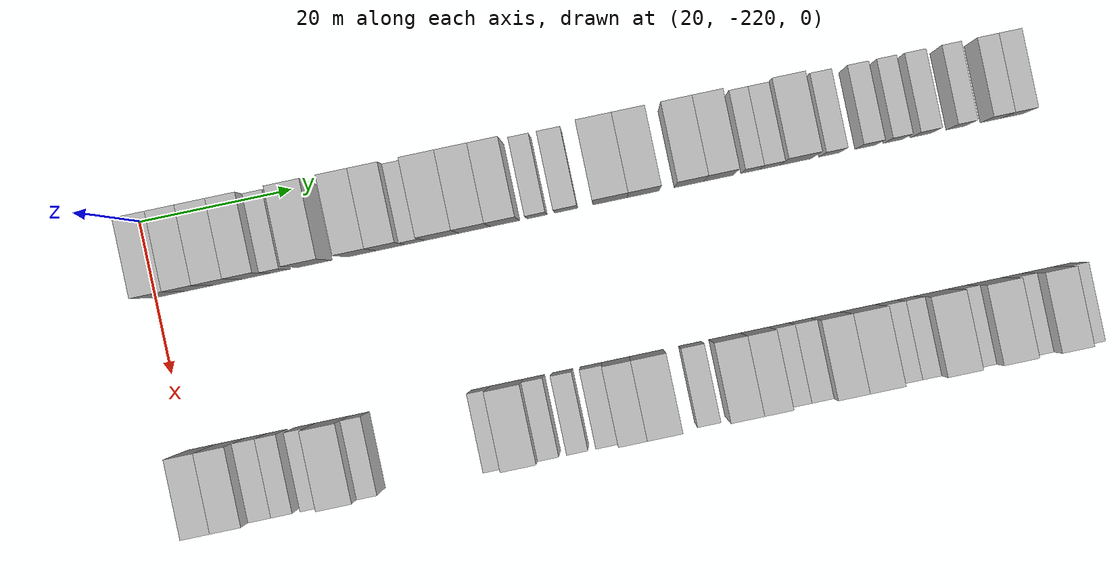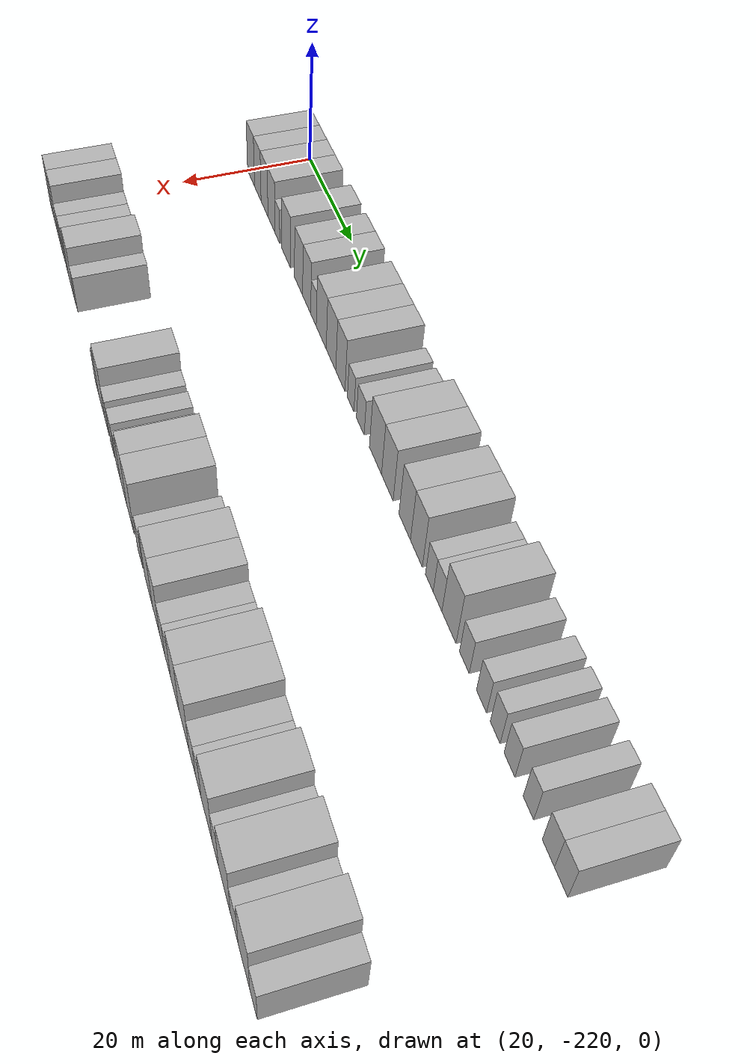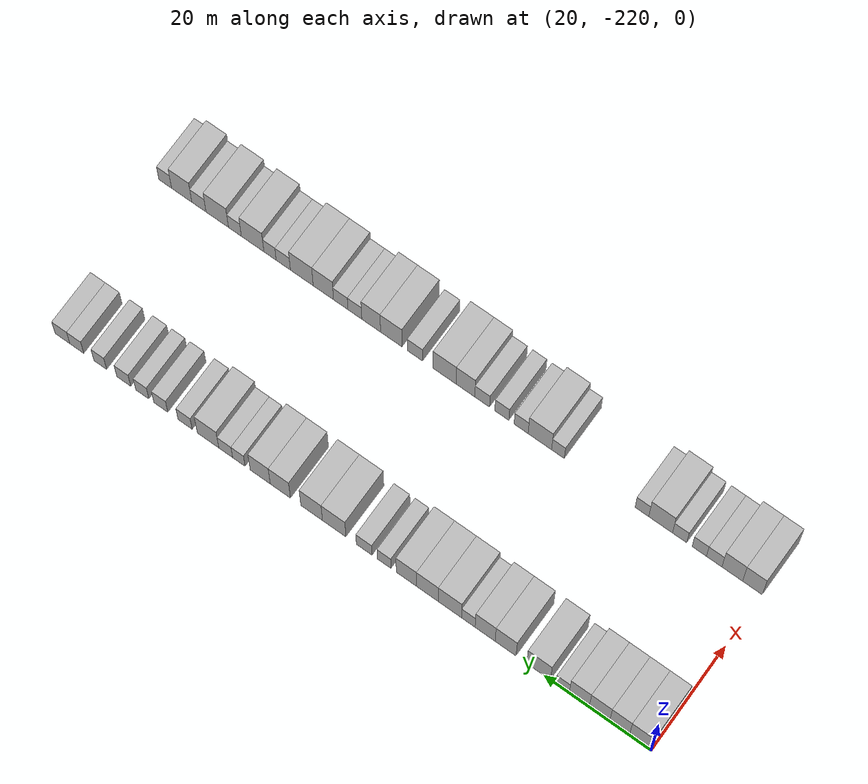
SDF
<sdf version="1.6">
 <world name="default">
  <model name="building_1">
   <static>1</static>
   <pose>25.0000 -217.9825 0 0.000000 0.000000 0.000000</pose>
   <link name="link">
    <pose>0 0 4.50 0 0 0</pose>
    <collision name="collision"><geometry><box><size>10.0000 4.0350 9.0000</size></box></geometry></collision>
    <visual name="visual">
     <cast_shadows>0</cast_shadows>
     <geometry><box><size>10.0000 4.0350 9.0000</size></box></geometry>
     <material>
      <script>
       <uri>model://HANNAS_wall/materials/scripts</uri>
       <uri>model://HANNAS_wall/materials/textures</uri>
       <name>vrc/HANNAS_wall</name>
      </script>
     </material>
    </visual>
   </link>
  </model>
  <model name="building_2">
   <static>1</static>
   <pose>25.0000 -214.1253 0 0.000000 0.000000 0.000000</pose>
   <link name="link">
    <pose>0 0 4.50 0 0 0</pose>
    <collision name="collision"><geometry><box><size>10.0000 3.6793 9.0000</size></box></geometry></collision>
    <visual name="visual">
     <cast_shadows>0</cast_shadows>
     <geometry><box><size>10.0000 3.6793 9.0000</size></box></geometry>
     <material>
      <script>
       <uri>model://HANNAS_wall/materials/scripts</uri>
       <uri>model://HANNAS_wall/materials/textures</uri>
       <name>vrc/HANNAS_wall</name>
      </script>
     </material>
    </visual>
   </link>
  </model>
  <model name="building_3">
   <static>1</static>
   <pose>25.0000 -210.3791 0 0.000000 0.000000 0.000000</pose>
   <link name="link">
    <pose>0 0 4.50 0 0 0</pose>
    <collision name="collision"><geometry><box><size>10.0000 3.8131 9.0000</size></box></geometry></collision>
    <visual name="visual">
     <cast_shadows>0</cast_shadows>
     <geometry><box><size>10.0000 3.8131 9.0000</size></box></geometry>
     <material>
      <script>
       <uri>model://HANNAS_wall/materials/scripts</uri>
       <uri>model://HANNAS_wall/materials/textures</uri>
       <name>vrc/HANNAS_wall</name>
      </script>
     </material>
    </visual>
   </link>
  </model>
  <model name="building_4">
   <static>1</static>
   <pose>25.0000 -206.6053 0 0.000000 0.000000 0.000000</pose>
   <link name="link">
    <pose>0 0 4.50 0 0 0</pose>
    <collision name="collision"><geometry><box><size>10.0000 3.7346 9.0000</size></box></geometry></collision>
    <visual name="visual">
     <cast_shadows>0</cast_shadows>
     <geometry><box><size>10.0000 3.7346 9.0000</size></box></geometry>
     <material>
      <script>
       <uri>model://HANNAS_wall/materials/scripts</uri>
       <uri>model://HANNAS_wall/materials/textures</uri>
       <name>vrc/HANNAS_wall</name>
      </script>
     </material>
    </visual>
   </link>
  </model>
  <model name="building_5">
   <static>1</static>
   <pose>25.0000 -203.4775 0 0.000000 0.000000 0.000000</pose>
   <link name="link">
    <pose>0 0 3.00 0 0 0</pose>
    <collision name="collision"><geometry><box><size>10.0000 2.5211 6.0000</size></box></geometry></collision>
    <visual name="visual">
     <cast_shadows>0</cast_shadows>
     <geometry><box><size>10.0000 2.5211 6.0000</size></box></geometry>
     <material>
      <script>
       <uri>model://HANNAS_wall/materials/scripts</uri>
       <uri>model://HANNAS_wall/materials/textures</uri>
       <name>vrc/HANNAS_wall</name>
      </script>
     </material>
    </visual>
   </link>
  </model>
  <model name="building_6">
   <static>1</static>
   <pose>25.0000 -198.9948 0 0.000000 0.000000 0.000000</pose>
   <link name="link">
    <pose>0 0 4.50 0 0 0</pose>
    <collision name="collision"><geometry><box><size>10.0000 4.4442 9.0000</size></box></geometry></collision>
    <visual name="visual">
     <cast_shadows>0</cast_shadows>
     <geometry><box><size>10.0000 4.4442 9.0000</size></box></geometry>
     <material>
      <script>
       <uri>model://HANNAS_wall/materials/scripts</uri>
       <uri>model://HANNAS_wall/materials/textures</uri>
       <name>vrc/HANNAS_wall</name>
      </script>
     </material>
    </visual>
   </link>
  </model>
  <model name="building_7">
   <static>1</static>
   <pose>25.0000 -192.8083 0 0.000000 0.000000 0.000000</pose>
   <link name="link">
    <pose>0 0 4.50 0 0 0</pose>
    <collision name="collision"><geometry><box><size>10.0000 3.9289 9.0000</size></box></geometry></collision>
    <visual name="visual">
     <cast_shadows>0</cast_shadows>
     <geometry><box><size>10.0000 3.9289 9.0000</size></box></geometry>
     <material>
      <script>
       <uri>model://HANNAS_wall/materials/scripts</uri>
       <uri>model://HANNAS_wall/materials/textures</uri>
       <name>vrc/HANNAS_wall</name>
      </script>
     </material>
    </visual>
   </link>
  </model>
  <model name="building_8">
   <static>1</static>
   <pose>25.0000 -188.9560 0 0.000000 0.000000 0.000000</pose>
   <link name="link">
    <pose>0 0 4.50 0 0 0</pose>
    <collision name="collision"><geometry><box><size>10.0000 3.7756 9.0000</size></box></geometry></collision>
    <visual name="visual">
     <cast_shadows>0</cast_shadows>
     <geometry><box><size>10.0000 3.7756 9.0000</size></box></geometry>
     <material>
      <script>
       <uri>model://HANNAS_wall/materials/scripts</uri>
       <uri>model://HANNAS_wall/materials/textures</uri>
       <name>vrc/HANNAS_wall</name>
      </script>
     </material>
    </visual>
   </link>
  </model>
  <model name="building_9">
   <static>1</static>
   <pose>25.0000 -185.7884 0 0.000000 0.000000 0.000000</pose>
   <link name="link">
    <pose>0 0 3.00 0 0 0</pose>
    <collision name="collision"><geometry><box><size>10.0000 2.5595 6.0000</size></box></geometry></collision>
    <visual name="visual">
     <cast_shadows>0</cast_shadows>
     <geometry><box><size>10.0000 2.5595 6.0000</size></box></geometry>
     <material>
      <script>
       <uri>model://HANNAS_wall/materials/scripts</uri>
       <uri>model://HANNAS_wall/materials/textures</uri>
       <name>vrc/HANNAS_wall</name>
      </script>
     </material>
    </visual>
   </link>
  </model>
  <model name="building_10">
   <static>1</static>
   <pose>25.0000 -182.2898 0 0.000000 0.000000 0.000000</pose>
   <link name="link">
    <pose>0 0 4.50 0 0 0</pose>
    <collision name="collision"><geometry><box><size>10.0000 4.4377 9.0000</size></box></geometry></collision>
    <visual name="visual">
     <cast_shadows>0</cast_shadows>
     <geometry><box><size>10.0000 4.4377 9.0000</size></box></geometry>
     <material>
      <script>
       <uri>model://HANNAS_wall/materials/scripts</uri>
       <uri>model://HANNAS_wall/materials/textures</uri>
       <name>vrc/HANNAS_wall</name>
      </script>
     </material>
    </visual>
   </link>
  </model>
  <model name="building_11">
   <static>1</static>
   <pose>25.0000 -178.0226 0 0.000000 0.000000 0.000000</pose>
   <link name="link">
    <pose>0 0 4.50 0 0 0</pose>
    <collision name="collision"><geometry><box><size>10.0000 4.0966 9.0000</size></box></geometry></collision>
    <visual name="visual">
     <cast_shadows>0</cast_shadows>
     <geometry><box><size>10.0000 4.0966 9.0000</size></box></geometry>
     <material>
      <script>
       <uri>model://HANNAS_wall/materials/scripts</uri>
       <uri>model://HANNAS_wall/materials/textures</uri>
       <name>vrc/HANNAS_wall</name>
      </script>
     </material>
    </visual>
   </link>
  </model>
  <model name="building_12">
   <static>1</static>
   <pose>25.0000 -174.0531 0 0.000000 0.000000 0.000000</pose>
   <link name="link">
    <pose>0 0 4.50 0 0 0</pose>
    <collision name="collision"><geometry><box><size>10.0000 3.8424 9.0000</size></box></geometry></collision>
    <visual name="visual">
     <cast_shadows>0</cast_shadows>
     <geometry><box><size>10.0000 3.8424 9.0000</size></box></geometry>
     <material>
      <script>
       <uri>model://HANNAS_wall/materials/scripts</uri>
       <uri>model://HANNAS_wall/materials/textures</uri>
       <name>vrc/HANNAS_wall</name>
      </script>
     </material>
    </visual>
   </link>
  </model>
  <model name="building_13">
   <static>1</static>
   <pose>25.0000 -169.8304 0 0.000000 0.000000 0.000000</pose>
   <link name="link">
    <pose>0 0 3.00 0 0 0</pose>
    <collision name="collision"><geometry><box><size>10.0000 2.6031 6.0000</size></box></geometry></collision>
    <visual name="visual">
     <cast_shadows>0</cast_shadows>
     <geometry><box><size>10.0000 2.6031 6.0000</size></box></geometry>
     <material>
      <script>
       <uri>model://HANNAS_wall/materials/scripts</uri>
       <uri>model://HANNAS_wall/materials/textures</uri>
       <name>vrc/HANNAS_wall</name>
      </script>
     </material>
    </visual>
   </link>
  </model>
  <model name="building_14">
   <static>1</static>
   <pose>25.0000 -166.0289 0 0.000000 0.000000 0.000000</pose>
   <link name="link">
    <pose>0 0 3.00 0 0 0</pose>
    <collision name="collision"><geometry><box><size>10.0000 2.9999 6.0000</size></box></geometry></collision>
    <visual name="visual">
     <cast_shadows>0</cast_shadows>
     <geometry><box><size>10.0000 2.9999 6.0000</size></box></geometry>
     <material>
      <script>
       <uri>model://HANNAS_wall/materials/scripts</uri>
       <uri>model://HANNAS_wall/materials/textures</uri>
       <name>vrc/HANNAS_wall</name>
      </script>
     </material>
    </visual>
   </link>
  </model>
  <model name="building_15">
   <static>1</static>
   <pose>25.0000 -160.2806 0 0.000000 0.000000 0.000000</pose>
   <link name="link">
    <pose>0 0 4.50 0 0 0</pose>
    <collision name="collision"><geometry><box><size>10.0000 4.4967 9.0000</size></box></geometry></collision>
    <visual name="visual">
     <cast_shadows>0</cast_shadows>
     <geometry><box><size>10.0000 4.4967 9.0000</size></box></geometry>
     <material>
      <script>
       <uri>model://HANNAS_wall/materials/scripts</uri>
       <uri>model://HANNAS_wall/materials/textures</uri>
       <name>vrc/HANNAS_wall</name>
      </script>
     </material>
    </visual>
   </link>
  </model>
  <model name="building_16">
   <static>1</static>
   <pose>25.0000 -155.9612 0 0.000000 0.000000 0.000000</pose>
   <link name="link">
    <pose>0 0 4.50 0 0 0</pose>
    <collision name="collision"><geometry><box><size>10.0000 4.1421 9.0000</size></box></geometry></collision>
    <visual name="visual">
     <cast_shadows>0</cast_shadows>
     <geometry><box><size>10.0000 4.1421 9.0000</size></box></geometry>
     <material>
      <script>
       <uri>model://HANNAS_wall/materials/scripts</uri>
       <uri>model://HANNAS_wall/materials/textures</uri>
       <name>vrc/HANNAS_wall</name>
      </script>
     </material>
    </visual>
   </link>
  </model>
  <model name="building_17">
   <static>1</static>
   <pose>25.0000 -149.9488 0 0.000000 0.000000 0.000000</pose>
   <link name="link">
    <pose>0 0 4.50 0 0 0</pose>
    <collision name="collision"><geometry><box><size>10.0000 3.8826 9.0000</size></box></geometry></collision>
    <visual name="visual">
     <cast_shadows>0</cast_shadows>
     <geometry><box><size>10.0000 3.8826 9.0000</size></box></geometry>
     <material>
      <script>
       <uri>model://HANNAS_wall/materials/scripts</uri>
       <uri>model://HANNAS_wall/materials/textures</uri>
       <name>vrc/HANNAS_wall</name>
      </script>
     </material>
    </visual>
   </link>
  </model>
  <model name="building_18">
   <static>1</static>
   <pose>25.0000 -146.0765 0 0.000000 0.000000 0.000000</pose>
   <link name="link">
    <pose>0 0 4.50 0 0 0</pose>
    <collision name="collision"><geometry><box><size>10.0000 3.8621 9.0000</size></box></geometry></collision>
    <visual name="visual">
     <cast_shadows>0</cast_shadows>
     <geometry><box><size>10.0000 3.8621 9.0000</size></box></geometry>
     <material>
      <script>
       <uri>model://HANNAS_wall/materials/scripts</uri>
       <uri>model://HANNAS_wall/materials/textures</uri>
       <name>vrc/HANNAS_wall</name>
      </script>
     </material>
    </visual>
   </link>
  </model>
  <model name="building_19">
   <static>1</static>
   <pose>25.0000 -141.9401 0 0.000000 0.000000 0.000000</pose>
   <link name="link">
    <pose>0 0 3.00 0 0 0</pose>
    <collision name="collision"><geometry><box><size>10.0000 2.4108 6.0000</size></box></geometry></collision>
    <visual name="visual">
     <cast_shadows>0</cast_shadows>
     <geometry><box><size>10.0000 2.4108 6.0000</size></box></geometry>
     <material>
      <script>
       <uri>model://HANNAS_wall/materials/scripts</uri>
       <uri>model://HANNAS_wall/materials/textures</uri>
       <name>vrc/HANNAS_wall</name>
      </script>
     </material>
    </visual>
   </link>
  </model>
  <model name="building_20">
   <static>1</static>
   <pose>25.0000 -139.4036 0 0.000000 0.000000 0.000000</pose>
   <link name="link">
    <pose>0 0 3.00 0 0 0</pose>
    <collision name="collision"><geometry><box><size>10.0000 2.6622 6.0000</size></box></geometry></collision>
    <visual name="visual">
     <cast_shadows>0</cast_shadows>
     <geometry><box><size>10.0000 2.6622 6.0000</size></box></geometry>
     <material>
      <script>
       <uri>model://HANNAS_wall/materials/scripts</uri>
       <uri>model://HANNAS_wall/materials/textures</uri>
       <name>vrc/HANNAS_wall</name>
      </script>
     </material>
    </visual>
   </link>
  </model>
  <model name="building_21">
   <static>1</static>
   <pose>25.0000 -135.9881 0 0.000000 0.000000 0.000000</pose>
   <link name="link">
    <pose>0 0 4.50 0 0 0</pose>
    <collision name="collision"><geometry><box><size>10.0000 4.1687 9.0000</size></box></geometry></collision>
    <visual name="visual">
     <cast_shadows>0</cast_shadows>
     <geometry><box><size>10.0000 4.1687 9.0000</size></box></geometry>
     <material>
      <script>
       <uri>model://HANNAS_wall/materials/scripts</uri>
       <uri>model://HANNAS_wall/materials/textures</uri>
       <name>vrc/HANNAS_wall</name>
      </script>
     </material>
    </visual>
   </link>
  </model>
  <model name="building_22">
   <static>1</static>
   <pose>25.0000 -131.5292 0 0.000000 0.000000 0.000000</pose>
   <link name="link">
    <pose>0 0 3.00 0 0 0</pose>
    <collision name="collision"><geometry><box><size>10.0000 2.7491 6.0000</size></box></geometry></collision>
    <visual name="visual">
     <cast_shadows>0</cast_shadows>
     <geometry><box><size>10.0000 2.7491 6.0000</size></box></geometry>
     <material>
      <script>
       <uri>model://HANNAS_wall/materials/scripts</uri>
       <uri>model://HANNAS_wall/materials/textures</uri>
       <name>vrc/HANNAS_wall</name>
      </script>
     </material>
    </visual>
   </link>
  </model>
  <model name="building_23">
   <static>1</static>
   <pose>25.0000 -126.8021 0 0.000000 0.000000 0.000000</pose>
   <link name="link">
    <pose>0 0 3.00 0 0 0</pose>
    <collision name="collision"><geometry><box><size>10.0000 2.7052 6.0000</size></box></geometry></collision>
    <visual name="visual">
     <cast_shadows>0</cast_shadows>
     <geometry><box><size>10.0000 2.7052 6.0000</size></box></geometry>
     <material>
      <script>
       <uri>model://HANNAS_wall/materials/scripts</uri>
       <uri>model://HANNAS_wall/materials/textures</uri>
       <name>vrc/HANNAS_wall</name>
      </script>
     </material>
    </visual>
   </link>
  </model>
  <model name="building_24">
   <static>1</static>
   <pose>25.0000 -123.1851 0 0.000000 0.000000 0.000000</pose>
   <link name="link">
    <pose>0 0 3.00 0 0 0</pose>
    <collision name="collision"><geometry><box><size>10.0000 2.5289 6.0000</size></box></geometry></collision>
    <visual name="visual">
     <cast_shadows>0</cast_shadows>
     <geometry><box><size>10.0000 2.5289 6.0000</size></box></geometry>
     <material>
      <script>
       <uri>model://HANNAS_wall/materials/scripts</uri>
       <uri>model://HANNAS_wall/materials/textures</uri>
       <name>vrc/HANNAS_wall</name>
      </script>
     </material>
    </visual>
   </link>
  </model>
  <model name="building_25">
   <static>1</static>
   <pose>25.0000 -119.5585 0 0.000000 0.000000 0.000000</pose>
   <link name="link">
    <pose>0 0 3.00 0 0 0</pose>
    <collision name="collision"><geometry><box><size>10.0000 2.7244 6.0000</size></box></geometry></collision>
    <visual name="visual">
     <cast_shadows>0</cast_shadows>
     <geometry><box><size>10.0000 2.7244 6.0000</size></box></geometry>
     <material>
      <script>
       <uri>model://HANNAS_wall/materials/scripts</uri>
       <uri>model://HANNAS_wall/materials/textures</uri>
       <name>vrc/HANNAS_wall</name>
      </script>
     </material>
    </visual>
   </link>
  </model>
  <model name="building_26">
   <static>1</static>
   <pose>25.0000 -114.9538 0 0.000000 0.000000 0.000000</pose>
   <link name="link">
    <pose>0 0 3.00 0 0 0</pose>
    <collision name="collision"><geometry><box><size>10.0000 2.4851 6.0000</size></box></geometry></collision>
    <visual name="visual">
     <cast_shadows>0</cast_shadows>
     <geometry><box><size>10.0000 2.4851 6.0000</size></box></geometry>
     <material>
      <script>
       <uri>model://HANNAS_wall/materials/scripts</uri>
       <uri>model://HANNAS_wall/materials/textures</uri>
       <name>vrc/HANNAS_wall</name>
      </script>
     </material>
    </visual>
   </link>
  </model>
  <model name="building_27">
   <static>1</static>
   <pose>25.0000 -110.3410 0 0.000000 0.000000 0.000000</pose>
   <link name="link">
    <pose>0 0 3.00 0 0 0</pose>
    <collision name="collision"><geometry><box><size>10.0000 2.7404 6.0000</size></box></geometry></collision>
    <visual name="visual">
     <cast_shadows>0</cast_shadows>
     <geometry><box><size>10.0000 2.7404 6.0000</size></box></geometry>
     <material>
      <script>
       <uri>model://HANNAS_wall/materials/scripts</uri>
       <uri>model://HANNAS_wall/materials/textures</uri>
       <name>vrc/HANNAS_wall</name>
      </script>
     </material>
    </visual>
   </link>
  </model>
  <model name="building_28">
   <static>1</static>
   <pose>25.0000 -107.5178 0 0.000000 0.000000 0.000000</pose>
   <link name="link">
    <pose>0 0 3.00 0 0 0</pose>
    <collision name="collision"><geometry><box><size>10.0000 2.9060 6.0000</size></box></geometry></collision>
    <visual name="visual">
     <cast_shadows>0</cast_shadows>
     <geometry><box><size>10.0000 2.9060 6.0000</size></box></geometry>
     <material>
      <script>
       <uri>model://HANNAS_wall/materials/scripts</uri>
       <uri>model://HANNAS_wall/materials/textures</uri>
       <name>vrc/HANNAS_wall</name>
      </script>
     </material>
    </visual>
   </link>
  </model>
  <model name="building_112">
   <static>1</static>
   <pose>55.0000 -218.1624 0 0.000000 0.000000 0.000000</pose>
   <link name="link">
    <pose>0 0 4.50 0 0 0</pose>
    <collision name="collision"><geometry><box><size>10.0000 3.6752 9.0000</size></box></geometry></collision>
    <visual name="visual">
     <cast_shadows>0</cast_shadows>
     <geometry><box><size>10.0000 3.6752 9.0000</size></box></geometry>
     <material>
      <script>
       <uri>model://HANNAS_wall/materials/scripts</uri>
       <uri>model://HANNAS_wall/materials/textures</uri>
       <name>vrc/HANNAS_wall</name>
      </script>
     </material>
    </visual>
   </link>
  </model>
  <model name="building_113">
   <static>1</static>
   <pose>55.0000 -214.3884 0 0.000000 0.000000 0.000000</pose>
   <link name="link">
    <pose>0 0 4.50 0 0 0</pose>
    <collision name="collision"><geometry><box><size>10.0000 3.8730 9.0000</size></box></geometry></collision>
    <visual name="visual">
     <cast_shadows>0</cast_shadows>
     <geometry><box><size>10.0000 3.8730 9.0000</size></box></geometry>
     <material>
      <script>
       <uri>model://HANNAS_wall/materials/scripts</uri>
       <uri>model://HANNAS_wall/materials/textures</uri>
       <name>vrc/HANNAS_wall</name>
      </script>
     </material>
    </visual>
   </link>
  </model>
  <model name="building_114">
   <static>1</static>
   <pose>55.0000 -211.0039 0 0.000000 0.000000 0.000000</pose>
   <link name="link">
    <pose>0 0 3.00 0 0 0</pose>
    <collision name="collision"><geometry><box><size>10.0000 2.8959 6.0000</size></box></geometry></collision>
    <visual name="visual">
     <cast_shadows>0</cast_shadows>
     <geometry><box><size>10.0000 2.8959 6.0000</size></box></geometry>
     <material>
      <script>
       <uri>model://HANNAS_wall/materials/scripts</uri>
       <uri>model://HANNAS_wall/materials/textures</uri>
       <name>vrc/HANNAS_wall</name>
      </script>
     </material>
    </visual>
   </link>
  </model>
  <model name="building_115">
   <static>1</static>
   <pose>55.0000 -208.2110 0 0.000000 0.000000 0.000000</pose>
   <link name="link">
    <pose>0 0 3.00 0 0 0</pose>
    <collision name="collision"><geometry><box><size>10.0000 2.6899 6.0000</size></box></geometry></collision>
    <visual name="visual">
     <cast_shadows>0</cast_shadows>
     <geometry><box><size>10.0000 2.6899 6.0000</size></box></geometry>
     <material>
      <script>
       <uri>model://HANNAS_wall/materials/scripts</uri>
       <uri>model://HANNAS_wall/materials/textures</uri>
       <name>vrc/HANNAS_wall</name>
      </script>
     </material>
    </visual>
   </link>
  </model>
  <model name="building_116">
   <static>1</static>
   <pose>55.0000 -204.5256 0 0.000000 0.000000 0.000000</pose>
   <link name="link">
    <pose>0 0 3.00 0 0 0</pose>
    <collision name="collision"><geometry><box><size>10.0000 2.6810 6.0000</size></box></geometry></collision>
    <visual name="visual">
     <cast_shadows>0</cast_shadows>
     <geometry><box><size>10.0000 2.6810 6.0000</size></box></geometry>
     <material>
      <script>
       <uri>model://HANNAS_wall/materials/scripts</uri>
       <uri>model://HANNAS_wall/materials/textures</uri>
       <name>vrc/HANNAS_wall</name>
      </script>
     </material>
    </visual>
   </link>
  </model>
  <model name="building_117">
   <static>1</static>
   <pose>55.0000 -200.9500 0 0.000000 0.000000 0.000000</pose>
   <link name="link">
    <pose>0 0 4.50 0 0 0</pose>
    <collision name="collision"><geometry><box><size>10.0000 4.4701 9.0000</size></box></geometry></collision>
    <visual name="visual">
     <cast_shadows>0</cast_shadows>
     <geometry><box><size>10.0000 4.4701 9.0000</size></box></geometry>
     <material>
      <script>
       <uri>model://HANNAS_wall/materials/scripts</uri>
       <uri>model://HANNAS_wall/materials/textures</uri>
       <name>vrc/HANNAS_wall</name>
      </script>
     </material>
    </visual>
   </link>
  </model>
  <model name="building_118">
   <static>1</static>
   <pose>55.0000 -197.4274 0 0.000000 0.000000 0.000000</pose>
   <link name="link">
    <pose>0 0 3.00 0 0 0</pose>
    <collision name="collision"><geometry><box><size>10.0000 2.5752 6.0000</size></box></geometry></collision>
    <visual name="visual">
     <cast_shadows>0</cast_shadows>
     <geometry><box><size>10.0000 2.5752 6.0000</size></box></geometry>
     <material>
      <script>
       <uri>model://HANNAS_wall/materials/scripts</uri>
       <uri>model://HANNAS_wall/materials/textures</uri>
       <name>vrc/HANNAS_wall</name>
      </script>
     </material>
    </visual>
   </link>
  </model>
  <model name="building_119">
   <static>1</static>
   <pose>55.0000 -181.4969 0 0.000000 0.000000 0.000000</pose>
   <link name="link">
    <pose>0 0 3.00 0 0 0</pose>
    <collision name="collision"><geometry><box><size>10.0000 2.4286 6.0000</size></box></geometry></collision>
    <visual name="visual">
     <cast_shadows>0</cast_shadows>
     <geometry><box><size>10.0000 2.4286 6.0000</size></box></geometry>
     <material>
      <script>
       <uri>model://HANNAS_wall/materials/scripts</uri>
       <uri>model://HANNAS_wall/materials/textures</uri>
       <name>vrc/HANNAS_wall</name>
      </script>
     </material>
    </visual>
   </link>
  </model>
  <model name="building_120">
   <static>1</static>
   <pose>55.0000 -178.0491 0 0.000000 0.000000 0.000000</pose>
   <link name="link">
    <pose>0 0 4.50 0 0 0</pose>
    <collision name="collision"><geometry><box><size>10.0000 4.4668 9.0000</size></box></geometry></collision>
    <visual name="visual">
     <cast_shadows>0</cast_shadows>
     <geometry><box><size>10.0000 4.4668 9.0000</size></box></geometry>
     <material>
      <script>
       <uri>model://HANNAS_wall/materials/scripts</uri>
       <uri>model://HANNAS_wall/materials/textures</uri>
       <name>vrc/HANNAS_wall</name>
      </script>
     </material>
    </visual>
   </link>
  </model>
  <model name="building_121">
   <static>1</static>
   <pose>55.0000 -174.4769 0 0.000000 0.000000 0.000000</pose>
   <link name="link">
    <pose>0 0 3.00 0 0 0</pose>
    <collision name="collision"><geometry><box><size>10.0000 2.6777 6.0000</size></box></geometry></collision>
    <visual name="visual">
     <cast_shadows>0</cast_shadows>
     <geometry><box><size>10.0000 2.6777 6.0000</size></box></geometry>
     <material>
      <script>
       <uri>model://HANNAS_wall/materials/scripts</uri>
       <uri>model://HANNAS_wall/materials/textures</uri>
       <name>vrc/HANNAS_wall</name>
      </script>
     </material>
    </visual>
   </link>
  </model>
  <model name="building_122">
   <static>1</static>
   <pose>55.0000 -170.7915 0 0.000000 0.000000 0.000000</pose>
   <link name="link">
    <pose>0 0 3.00 0 0 0</pose>
    <collision name="collision"><geometry><box><size>10.0000 2.6930 6.0000</size></box></geometry></collision>
    <visual name="visual">
     <cast_shadows>0</cast_shadows>
     <geometry><box><size>10.0000 2.6930 6.0000</size></box></geometry>
     <material>
      <script>
       <uri>model://HANNAS_wall/materials/scripts</uri>
       <uri>model://HANNAS_wall/materials/textures</uri>
       <name>vrc/HANNAS_wall</name>
      </script>
     </material>
    </visual>
   </link>
  </model>
  <model name="building_123">
   <static>1</static>
   <pose>55.0000 -167.0254 0 0.000000 0.000000 0.000000</pose>
   <link name="link">
    <pose>0 0 3.00 0 0 0</pose>
    <collision name="collision"><geometry><box><size>10.0000 2.8392 6.0000</size></box></geometry></collision>
    <visual name="visual">
     <cast_shadows>0</cast_shadows>
     <geometry><box><size>10.0000 2.8392 6.0000</size></box></geometry>
     <material>
      <script>
       <uri>model://HANNAS_wall/materials/scripts</uri>
       <uri>model://HANNAS_wall/materials/textures</uri>
       <name>vrc/HANNAS_wall</name>
      </script>
     </material>
    </visual>
   </link>
  </model>
  <model name="building_124">
   <static>1</static>
   <pose>55.0000 -163.8058 0 0.000000 0.000000 0.000000</pose>
   <link name="link">
    <pose>0 0 4.50 0 0 0</pose>
    <collision name="collision"><geometry><box><size>10.0000 3.6001 9.0000</size></box></geometry></collision>
    <visual name="visual">
     <cast_shadows>0</cast_shadows>
     <geometry><box><size>10.0000 3.6001 9.0000</size></box></geometry>
     <material>
      <script>
       <uri>model://HANNAS_wall/materials/scripts</uri>
       <uri>model://HANNAS_wall/materials/textures</uri>
       <name>vrc/HANNAS_wall</name>
      </script>
     </material>
    </visual>
   </link>
  </model>
  <model name="building_125">
   <static>1</static>
   <pose>55.0000 -159.7866 0 0.000000 0.000000 0.000000</pose>
   <link name="link">
    <pose>0 0 4.50 0 0 0</pose>
    <collision name="collision"><geometry><box><size>10.0000 4.4382 9.0000</size></box></geometry></collision>
    <visual name="visual">
     <cast_shadows>0</cast_shadows>
     <geometry><box><size>10.0000 4.4382 9.0000</size></box></geometry>
     <material>
      <script>
       <uri>model://HANNAS_wall/materials/scripts</uri>
       <uri>model://HANNAS_wall/materials/textures</uri>
       <name>vrc/HANNAS_wall</name>
      </script>
     </material>
    </visual>
   </link>
  </model>
  <model name="building_126">
   <static>1</static>
   <pose>55.0000 -154.0852 0 0.000000 0.000000 0.000000</pose>
   <link name="link">
    <pose>0 0 3.00 0 0 0</pose>
    <collision name="collision"><geometry><box><size>10.0000 2.9647 6.0000</size></box></geometry></collision>
    <visual name="visual">
     <cast_shadows>0</cast_shadows>
     <geometry><box><size>10.0000 2.9647 6.0000</size></box></geometry>
     <material>
      <script>
       <uri>model://HANNAS_wall/materials/scripts</uri>
       <uri>model://HANNAS_wall/materials/textures</uri>
       <name>vrc/HANNAS_wall</name>
      </script>
     </material>
    </visual>
   </link>
  </model>
  <model name="building_127">
   <static>1</static>
   <pose>55.0000 -149.5164 0 0.000000 0.000000 0.000000</pose>
   <link name="link">
    <pose>0 0 4.50 0 0 0</pose>
    <collision name="collision"><geometry><box><size>10.0000 4.1728 9.0000</size></box></geometry></collision>
    <visual name="visual">
     <cast_shadows>0</cast_shadows>
     <geometry><box><size>10.0000 4.1728 9.0000</size></box></geometry>
     <material>
      <script>
       <uri>model://HANNAS_wall/materials/scripts</uri>
       <uri>model://HANNAS_wall/materials/textures</uri>
       <name>vrc/HANNAS_wall</name>
      </script>
     </material>
    </visual>
   </link>
  </model>
  <model name="building_128">
   <static>1</static>
   <pose>55.0000 -145.6116 0 0.000000 0.000000 0.000000</pose>
   <link name="link">
    <pose>0 0 4.50 0 0 0</pose>
    <collision name="collision"><geometry><box><size>10.0000 3.6369 9.0000</size></box></geometry></collision>
    <visual name="visual">
     <cast_shadows>0</cast_shadows>
     <geometry><box><size>10.0000 3.6369 9.0000</size></box></geometry>
     <material>
      <script>
       <uri>model://HANNAS_wall/materials/scripts</uri>
       <uri>model://HANNAS_wall/materials/textures</uri>
       <name>vrc/HANNAS_wall</name>
      </script>
     </material>
    </visual>
   </link>
  </model>
  <model name="building_129">
   <static>1</static>
   <pose>55.0000 -142.4446 0 0.000000 0.000000 0.000000</pose>
   <link name="link">
    <pose>0 0 3.00 0 0 0</pose>
    <collision name="collision"><geometry><box><size>10.0000 2.6971 6.0000</size></box></geometry></collision>
    <visual name="visual">
     <cast_shadows>0</cast_shadows>
     <geometry><box><size>10.0000 2.6971 6.0000</size></box></geometry>
     <material>
      <script>
       <uri>model://HANNAS_wall/materials/scripts</uri>
       <uri>model://HANNAS_wall/materials/textures</uri>
       <name>vrc/HANNAS_wall</name>
      </script>
     </material>
    </visual>
   </link>
  </model>
  <model name="building_130">
   <static>1</static>
   <pose>55.0000 -139.6957 0 0.000000 0.000000 0.000000</pose>
   <link name="link">
    <pose>0 0 3.00 0 0 0</pose>
    <collision name="collision"><geometry><box><size>10.0000 2.8008 6.0000</size></box></geometry></collision>
    <visual name="visual">
     <cast_shadows>0</cast_shadows>
     <geometry><box><size>10.0000 2.8008 6.0000</size></box></geometry>
     <material>
      <script>
       <uri>model://HANNAS_wall/materials/scripts</uri>
       <uri>model://HANNAS_wall/materials/textures</uri>
       <name>vrc/HANNAS_wall</name>
      </script>
     </material>
    </visual>
   </link>
  </model>
  <model name="building_131">
   <static>1</static>
   <pose>55.0000 -136.3139 0 0.000000 0.000000 0.000000</pose>
   <link name="link">
    <pose>0 0 4.50 0 0 0</pose>
    <collision name="collision"><geometry><box><size>10.0000 3.9626 9.0000</size></box></geometry></collision>
    <visual name="visual">
     <cast_shadows>0</cast_shadows>
     <geometry><box><size>10.0000 3.9626 9.0000</size></box></geometry>
     <material>
      <script>
       <uri>model://HANNAS_wall/materials/scripts</uri>
       <uri>model://HANNAS_wall/materials/textures</uri>
       <name>vrc/HANNAS_wall</name>
      </script>
     </material>
    </visual>
   </link>
  </model>
  <model name="building_132">
   <static>1</static>
   <pose>55.0000 -132.1039 0 0.000000 0.000000 0.000000</pose>
   <link name="link">
    <pose>0 0 4.50 0 0 0</pose>
    <collision name="collision"><geometry><box><size>10.0000 4.4575 9.0000</size></box></geometry></collision>
    <visual name="visual">
     <cast_shadows>0</cast_shadows>
     <geometry><box><size>10.0000 4.4575 9.0000</size></box></geometry>
     <material>
      <script>
       <uri>model://HANNAS_wall/materials/scripts</uri>
       <uri>model://HANNAS_wall/materials/textures</uri>
       <name>vrc/HANNAS_wall</name>
      </script>
     </material>
    </visual>
   </link>
  </model>
  <model name="building_133">
   <static>1</static>
   <pose>55.0000 -128.4792 0 0.000000 0.000000 0.000000</pose>
   <link name="link">
    <pose>0 0 3.00 0 0 0</pose>
    <collision name="collision"><geometry><box><size>10.0000 2.7920 6.0000</size></box></geometry></collision>
    <visual name="visual">
     <cast_shadows>0</cast_shadows>
     <geometry><box><size>10.0000 2.7920 6.0000</size></box></geometry>
     <material>
      <script>
       <uri>model://HANNAS_wall/materials/scripts</uri>
       <uri>model://HANNAS_wall/materials/textures</uri>
       <name>vrc/HANNAS_wall</name>
      </script>
     </material>
    </visual>
   </link>
  </model>
  <model name="building_134">
   <static>1</static>
   <pose>55.0000 -125.8825 0 0.000000 0.000000 0.000000</pose>
   <link name="link">
    <pose>0 0 3.00 0 0 0</pose>
    <collision name="collision"><geometry><box><size>10.0000 2.4013 6.0000</size></box></geometry></collision>
    <visual name="visual">
     <cast_shadows>0</cast_shadows>
     <geometry><box><size>10.0000 2.4013 6.0000</size></box></geometry>
     <material>
      <script>
       <uri>model://HANNAS_wall/materials/scripts</uri>
       <uri>model://HANNAS_wall/materials/textures</uri>
       <name>vrc/HANNAS_wall</name>
      </script>
     </material>
    </visual>
   </link>
  </model>
  <model name="building_135">
   <static>1</static>
   <pose>55.0000 -122.4687 0 0.000000 0.000000 0.000000</pose>
   <link name="link">
    <pose>0 0 4.50 0 0 0</pose>
    <collision name="collision"><geometry><box><size>10.0000 4.4263 9.0000</size></box></geometry></collision>
    <visual name="visual">
     <cast_shadows>0</cast_shadows>
     <geometry><box><size>10.0000 4.4263 9.0000</size></box></geometry>
     <material>
      <script>
       <uri>model://HANNAS_wall/materials/scripts</uri>
       <uri>model://HANNAS_wall/materials/textures</uri>
       <name>vrc/HANNAS_wall</name>
      </script>
     </material>
    </visual>
   </link>
  </model>
  <model name="building_136">
   <static>1</static>
   <pose>55.0000 -118.9888 0 0.000000 0.000000 0.000000</pose>
   <link name="link">
    <pose>0 0 3.00 0 0 0</pose>
    <collision name="collision"><geometry><box><size>10.0000 2.5336 6.0000</size></box></geometry></collision>
    <visual name="visual">
     <cast_shadows>0</cast_shadows>
     <geometry><box><size>10.0000 2.5336 6.0000</size></box></geometry>
     <material>
      <script>
       <uri>model://HANNAS_wall/materials/scripts</uri>
       <uri>model://HANNAS_wall/materials/textures</uri>
       <name>vrc/HANNAS_wall</name>
      </script>
     </material>
    </visual>
   </link>
  </model>
  <model name="building_137">
   <static>1</static>
   <pose>55.0000 -115.5117 0 0.000000 0.000000 0.000000</pose>
   <link name="link">
    <pose>0 0 4.50 0 0 0</pose>
    <collision name="collision"><geometry><box><size>10.0000 4.4207 9.0000</size></box></geometry></collision>
    <visual name="visual">
     <cast_shadows>0</cast_shadows>
     <geometry><box><size>10.0000 4.4207 9.0000</size></box></geometry>
     <material>
      <script>
       <uri>model://HANNAS_wall/materials/scripts</uri>
       <uri>model://HANNAS_wall/materials/textures</uri>
       <name>vrc/HANNAS_wall</name>
      </script>
     </material>
    </visual>
   </link>
  </model>
  <model name="building_138">
   <static>1</static>
   <pose>55.0000 -111.8981 0 0.000000 0.000000 0.000000</pose>
   <link name="link">
    <pose>0 0 3.00 0 0 0</pose>
    <collision name="collision"><geometry><box><size>10.0000 2.8064 6.0000</size></box></geometry></collision>
    <visual name="visual">
     <cast_shadows>0</cast_shadows>
     <geometry><box><size>10.0000 2.8064 6.0000</size></box></geometry>
     <material>
      <script>
       <uri>model://HANNAS_wall/materials/scripts</uri>
       <uri>model://HANNAS_wall/materials/textures</uri>
       <name>vrc/HANNAS_wall</name>
      </script>
     </material>
    </visual>
   </link>
  </model>
  <model name="building_139">
   <static>1</static>
   <pose>55.0000 -108.4876 0 0.000000 0.000000 0.000000</pose>
   <link name="link">
    <pose>0 0 4.50 0 0 0</pose>
    <collision name="collision"><geometry><box><size>10.0000 4.0146 9.0000</size></box></geometry></collision>
    <visual name="visual">
     <cast_shadows>0</cast_shadows>
     <geometry><box><size>10.0000 4.0146 9.0000</size></box></geometry>
     <material>
      <script>
       <uri>model://HANNAS_wall/materials/scripts</uri>
       <uri>model://HANNAS_wall/materials/textures</uri>
       <name>vrc/HANNAS_wall</name>
      </script>
     </material>
    </visual>
   </link>
  </model>
  <model name="building_140">
   <static>1</static>
   <pose>55.0000 -105.2235 0 0.000000 0.000000 0.000000</pose>
   <link name="link">
    <pose>0 0 3.00 0 0 0</pose>
    <collision name="collision"><geometry><box><size>10.0000 2.5134 6.0000</size></box></geometry></collision>
    <visual name="visual">
     <cast_shadows>0</cast_shadows>
     <geometry><box><size>10.0000 2.5134 6.0000</size></box></geometry>
     <material>
      <script>
       <uri>model://HANNAS_wall/materials/scripts</uri>
       <uri>model://HANNAS_wall/materials/textures</uri>
       <name>vrc/HANNAS_wall</name>
      </script>
     </material>
    </visual>
   </link>
  </model>
 </world>
</sdf>
